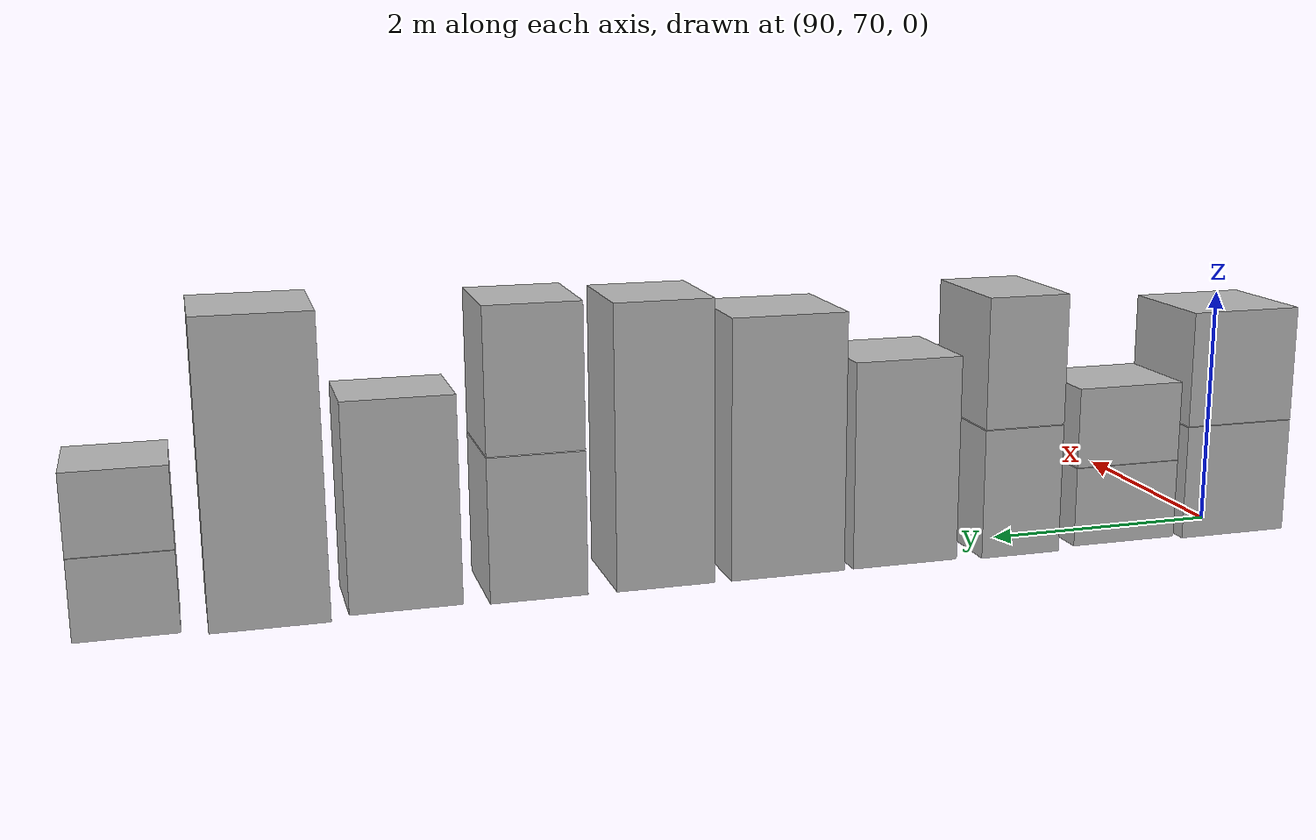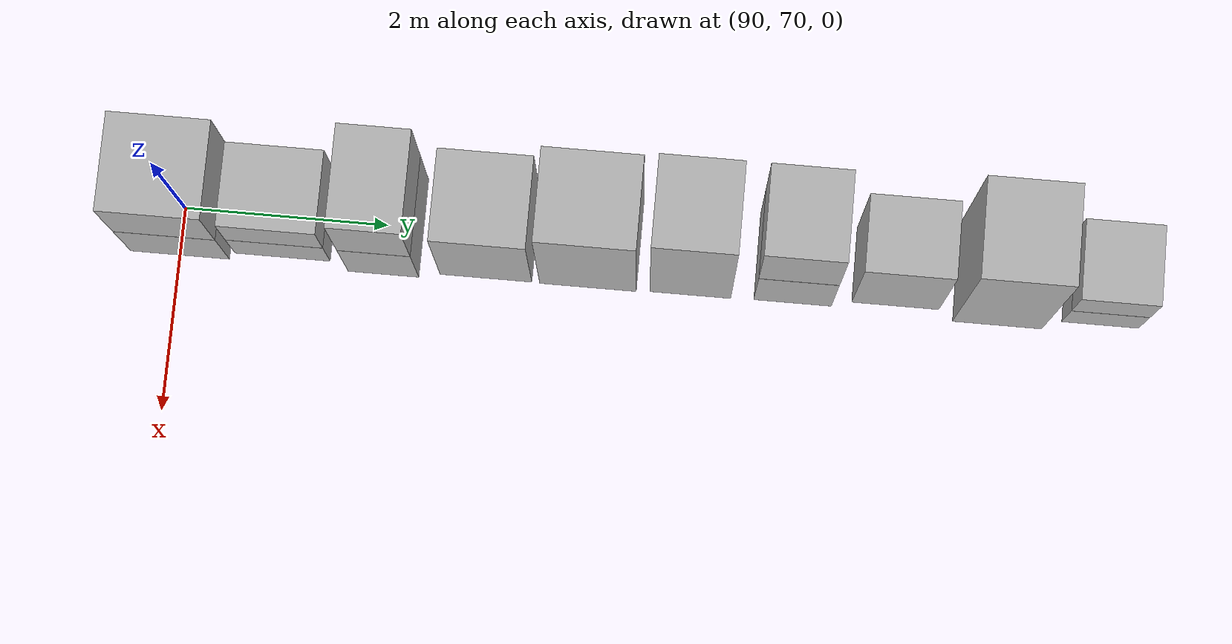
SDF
<sdf version="1.5">
 <world name="default">
  <model name="ground_plane">
   <static>true</static>
   <link name="link">
    <collision name="collision">
     <geometry><plane><normal>0 0 1</normal><size>250 250</size></plane></geometry>
     <surface><friction><ode><mu>1</mu><mu2>1</mu2></ode></friction></surface>
    </collision>
    <visual name="grass">
     <cast_shadows>false</cast_shadows>
     <geometry><mesh><uri>file://grass_plane/meshes/grass_plane.dae</uri></mesh></geometry>
    </visual>
   </link>
  </model>
  <model name="Cardboard_box_720">
   <link name="link_0">
    <pose>90 70 0 0 0 0</pose>
    <inertial>
     <mass>1</mass>
     <inertia>
      <ixx>0.166667</ixx>
      <ixy>0</ixy>
      <ixz>0</ixz>
      <iyy>0.166667</iyy>
      <iyz>0</iyz>
      <izz>0.166667</izz>
     </inertia>
    </inertial>
    <collision name="collision">
     <geometry>
      <mesh>
       <uri>model://Cardboard_box/meshes/cardboard_box.dae</uri>
       <scale>2.36227629901 2.44434173801 2.41922473162</scale>
      </mesh>
     </geometry>
    </collision>
    <visual name="visual">
     <geometry>
      <mesh>
       <uri>model://Cardboard_box/meshes/cardboard_box.dae</uri>
       <scale>2.36227629901 2.44434173801 2.41922473162</scale>
      </mesh>
     </geometry>
    </visual>
   </link>
   <static>1</static>
  </model>
  <model name="Cardboard_box_top_720">
   <link name="link_0">
    <pose>90 70 0.96768989265 0 0 0</pose>
    <inertial>
     <mass>1</mass>
     <inertia>
      <ixx>0.166667</ixx>
      <ixy>0</ixy>
      <ixz>0</ixz>
      <iyy>0.166667</iyy>
      <iyz>0</iyz>
      <izz>0.166667</izz>
     </inertia>
    </inertial>
    <collision name="collision">
     <geometry>
      <mesh>
       <uri>model://Cardboard_box/meshes/cardboard_box.dae</uri>
       <scale>2.36227629901 2.44434173801 2.41922473162</scale>
      </mesh>
     </geometry>
    </collision>
    <visual name="visual">
     <geometry>
      <mesh>
       <uri>model://Cardboard_box/meshes/cardboard_box.dae</uri>
       <scale>2.36227629901 2.44434173801 2.41922473162</scale>
      </mesh>
     </geometry>
    </visual>
   </link>
   <static>1</static>
  </model>
  <model name="Cardboard_box_721">
   <link name="link_0">
    <pose>90 71 0 0 0 0</pose>
    <inertial>
     <mass>1</mass>
     <inertia>
      <ixx>0.166667</ixx>
      <ixy>0</ixy>
      <ixz>0</ixz>
      <iyy>0.166667</iyy>
      <iyz>0</iyz>
      <izz>0.166667</izz>
     </inertia>
    </inertial>
    <collision name="collision">
     <geometry>
      <mesh>
       <uri>model://Cardboard_box/meshes/cardboard_box.dae</uri>
       <scale>2.03470084358 2.35611073073 1.68010185496</scale>
      </mesh>
     </geometry>
    </collision>
    <visual name="visual">
     <geometry>
      <mesh>
       <uri>model://Cardboard_box/meshes/cardboard_box.dae</uri>
       <scale>2.03470084358 2.35611073073 1.68010185496</scale>
      </mesh>
     </geometry>
    </visual>
   </link>
   <static>1</static>
  </model>
  <model name="Cardboard_box_top_721">
   <link name="link_0">
    <pose>90 71 0.672040741985 0 0 0</pose>
    <inertial>
     <mass>1</mass>
     <inertia>
      <ixx>0.166667</ixx>
      <ixy>0</ixy>
      <ixz>0</ixz>
      <iyy>0.166667</iyy>
      <iyz>0</iyz>
      <izz>0.166667</izz>
     </inertia>
    </inertial>
    <collision name="collision">
     <geometry>
      <mesh>
       <uri>model://Cardboard_box/meshes/cardboard_box.dae</uri>
       <scale>2.03470084358 2.35611073073 1.68010185496</scale>
      </mesh>
     </geometry>
    </collision>
    <visual name="visual">
     <geometry>
      <mesh>
       <uri>model://Cardboard_box/meshes/cardboard_box.dae</uri>
       <scale>2.03470084358 2.35611073073 1.68010185496</scale>
      </mesh>
     </geometry>
    </visual>
   </link>
   <static>1</static>
  </model>
  <model name="Cardboard_box_722">
   <link name="link_0">
    <pose>90 72 0 0 0 0</pose>
    <inertial>
     <mass>1</mass>
     <inertia>
      <ixx>0.166667</ixx>
      <ixy>0</ixy>
      <ixz>0</ixz>
      <iyy>0.166667</iyy>
      <iyz>0</iyz>
      <izz>0.166667</izz>
     </inertia>
    </inertial>
    <collision name="collision">
     <geometry>
      <mesh>
       <uri>model://Cardboard_box/meshes/cardboard_box.dae</uri>
       <scale>2.45652054648 1.74419543913 2.69760283321</scale>
      </mesh>
     </geometry>
    </collision>
    <visual name="visual">
     <geometry>
      <mesh>
       <uri>model://Cardboard_box/meshes/cardboard_box.dae</uri>
       <scale>2.45652054648 1.74419543913 2.69760283321</scale>
      </mesh>
     </geometry>
    </visual>
   </link>
   <static>1</static>
  </model>
  <model name="Cardboard_box_top_722">
   <link name="link_0">
    <pose>90 72 1.07904113328 0 0 0</pose>
    <inertial>
     <mass>1</mass>
     <inertia>
      <ixx>0.166667</ixx>
      <ixy>0</ixy>
      <ixz>0</ixz>
      <iyy>0.166667</iyy>
      <iyz>0</iyz>
      <izz>0.166667</izz>
     </inertia>
    </inertial>
    <collision name="collision">
     <geometry>
      <mesh>
       <uri>model://Cardboard_box/meshes/cardboard_box.dae</uri>
       <scale>2.45652054648 1.74419543913 2.69760283321</scale>
      </mesh>
     </geometry>
    </collision>
    <visual name="visual">
     <geometry>
      <mesh>
       <uri>model://Cardboard_box/meshes/cardboard_box.dae</uri>
       <scale>2.45652054648 1.74419543913 2.69760283321</scale>
      </mesh>
     </geometry>
    </visual>
   </link>
   <static>1</static>
  </model>
  <model name="Cardboard_box_723">
   <link name="link_0">
    <pose>90 73 0 0 0 0</pose>
    <inertial>
     <mass>1</mass>
     <inertia>
      <ixx>0.166667</ixx>
      <ixy>0</ixy>
      <ixz>0</ixz>
      <iyy>0.166667</iyy>
      <iyz>0</iyz>
      <izz>0.166667</izz>
     </inertia>
    </inertial>
    <collision name="collision">
     <geometry>
      <mesh>
       <uri>model://Cardboard_box/meshes/cardboard_box.dae</uri>
       <scale>2.21803894658 2.26666771666 4.24743680076</scale>
      </mesh>
     </geometry>
    </collision>
    <visual name="visual">
     <geometry>
      <mesh>
       <uri>model://Cardboard_box/meshes/cardboard_box.dae</uri>
       <scale>2.21803894658 2.26666771666 4.24743680076</scale>
      </mesh>
     </geometry>
    </visual>
   </link>
   <static>1</static>
  </model>
  <model name="Cardboard_box_724">
   <link name="link_0">
    <pose>90 74 0 0 0 0</pose>
    <inertial>
     <mass>1</mass>
     <inertia>
      <ixx>0.166667</ixx>
      <ixy>0</ixy>
      <ixz>0</ixz>
      <iyy>0.166667</iyy>
      <iyz>0</iyz>
      <izz>0.166667</izz>
     </inertia>
    </inertial>
    <collision name="collision">
     <geometry>
      <mesh>
       <uri>model://Cardboard_box/meshes/cardboard_box.dae</uri>
       <scale>2.24519056595 2.37934156239 5.27713786341</scale>
      </mesh>
     </geometry>
    </collision>
    <visual name="visual">
     <geometry>
      <mesh>
       <uri>model://Cardboard_box/meshes/cardboard_box.dae</uri>
       <scale>2.24519056595 2.37934156239 5.27713786341</scale>
      </mesh>
     </geometry>
    </visual>
   </link>
   <static>1</static>
  </model>
  <model name="Cardboard_box_725">
   <link name="link_0">
    <pose>90 75 0 0 0 0</pose>
    <inertial>
     <mass>1</mass>
     <inertia>
      <ixx>0.166667</ixx>
      <ixy>0</ixy>
      <ixz>0</ixz>
      <iyy>0.166667</iyy>
      <iyz>0</iyz>
      <izz>0.166667</izz>
     </inertia>
    </inertial>
    <collision name="collision">
     <geometry>
      <mesh>
       <uri>model://Cardboard_box/meshes/cardboard_box.dae</uri>
       <scale>2.18965581575 1.99142833052 5.68337641677</scale>
      </mesh>
     </geometry>
    </collision>
    <visual name="visual">
     <geometry>
      <mesh>
       <uri>model://Cardboard_box/meshes/cardboard_box.dae</uri>
       <scale>2.18965581575 1.99142833052 5.68337641677</scale>
      </mesh>
     </geometry>
    </visual>
   </link>
   <static>1</static>
  </model>
  <model name="Cardboard_box_726">
   <link name="link_0">
    <pose>90 76 0 0 0 0</pose>
    <inertial>
     <mass>1</mass>
     <inertia>
      <ixx>0.166667</ixx>
      <ixy>0</ixy>
      <ixz>0</ixz>
      <iyy>0.166667</iyy>
      <iyz>0</iyz>
      <izz>0.166667</izz>
     </inertia>
    </inertial>
    <collision name="collision">
     <geometry>
      <mesh>
       <uri>model://Cardboard_box/meshes/cardboard_box.dae</uri>
       <scale>2.15039274204 1.90733815692 2.86860161404</scale>
      </mesh>
     </geometry>
    </collision>
    <visual name="visual">
     <geometry>
      <mesh>
       <uri>model://Cardboard_box/meshes/cardboard_box.dae</uri>
       <scale>2.15039274204 1.90733815692 2.86860161404</scale>
      </mesh>
     </geometry>
    </visual>
   </link>
   <static>1</static>
  </model>
  <model name="Cardboard_box_top_726">
   <link name="link_0">
    <pose>90 76 1.14744064562 0 0 0</pose>
    <inertial>
     <mass>1</mass>
     <inertia>
      <ixx>0.166667</ixx>
      <ixy>0</ixy>
      <ixz>0</ixz>
      <iyy>0.166667</iyy>
      <iyz>0</iyz>
      <izz>0.166667</izz>
     </inertia>
    </inertial>
    <collision name="collision">
     <geometry>
      <mesh>
       <uri>model://Cardboard_box/meshes/cardboard_box.dae</uri>
       <scale>2.15039274204 1.90733815692 2.86860161404</scale>
      </mesh>
     </geometry>
    </collision>
    <visual name="visual">
     <geometry>
      <mesh>
       <uri>model://Cardboard_box/meshes/cardboard_box.dae</uri>
       <scale>2.15039274204 1.90733815692 2.86860161404</scale>
      </mesh>
     </geometry>
    </visual>
   </link>
   <static>1</static>
  </model>
  <model name="Cardboard_box_727">
   <link name="link_0">
    <pose>90 77 0 0 0 0</pose>
    <inertial>
     <mass>1</mass>
     <inertia>
      <ixx>0.166667</ixx>
      <ixy>0</ixy>
      <ixz>0</ixz>
      <iyy>0.166667</iyy>
      <iyz>0</iyz>
      <izz>0.166667</izz>
     </inertia>
    </inertial>
    <collision name="collision">
     <geometry>
      <mesh>
       <uri>model://Cardboard_box/meshes/cardboard_box.dae</uri>
       <scale>1.86069421815 2.14466220162 4.09804074117</scale>
      </mesh>
     </geometry>
    </collision>
    <visual name="visual">
     <geometry>
      <mesh>
       <uri>model://Cardboard_box/meshes/cardboard_box.dae</uri>
       <scale>1.86069421815 2.14466220162 4.09804074117</scale>
      </mesh>
     </geometry>
    </visual>
   </link>
   <static>1</static>
  </model>
  <model name="Cardboard_box_728">
   <link name="link_0">
    <pose>90 78 0 0 0 0</pose>
    <inertial>
     <mass>1</mass>
     <inertia>
      <ixx>0.166667</ixx>
      <ixy>0</ixy>
      <ixz>0</ixz>
      <iyy>0.166667</iyy>
      <iyz>0</iyz>
      <izz>0.166667</izz>
     </inertia>
    </inertial>
    <collision name="collision">
     <geometry>
      <mesh>
       <uri>model://Cardboard_box/meshes/cardboard_box.dae</uri>
       <scale>2.38758718046 2.19328989284 5.84391978957</scale>
      </mesh>
     </geometry>
    </collision>
    <visual name="visual">
     <geometry>
      <mesh>
       <uri>model://Cardboard_box/meshes/cardboard_box.dae</uri>
       <scale>2.38758718046 2.19328989284 5.84391978957</scale>
      </mesh>
     </geometry>
    </visual>
   </link>
   <static>1</static>
  </model>
  <model name="Cardboard_box_729">
   <link name="link_0">
    <pose>90 79 0 0 0 0</pose>
    <inertial>
     <mass>1</mass>
     <inertia>
      <ixx>0.166667</ixx>
      <ixy>0</ixy>
      <ixz>0</ixz>
      <iyy>0.166667</iyy>
      <iyz>0</iyz>
      <izz>0.166667</izz>
     </inertia>
    </inertial>
    <collision name="collision">
     <geometry>
      <mesh>
       <uri>model://Cardboard_box/meshes/cardboard_box.dae</uri>
       <scale>1.94443207684 1.88824893793 1.57354594852</scale>
      </mesh>
     </geometry>
    </collision>
    <visual name="visual">
     <geometry>
      <mesh>
       <uri>model://Cardboard_box/meshes/cardboard_box.dae</uri>
       <scale>1.94443207684 1.88824893793 1.57354594852</scale>
      </mesh>
     </geometry>
    </visual>
   </link>
   <static>1</static>
  </model>
  <model name="Cardboard_box_top_729">
   <link name="link_0">
    <pose>90 79 0.62941837941 0 0 0</pose>
    <inertial>
     <mass>1</mass>
     <inertia>
      <ixx>0.166667</ixx>
      <ixy>0</ixy>
      <ixz>0</ixz>
      <iyy>0.166667</iyy>
      <iyz>0</iyz>
      <izz>0.166667</izz>
     </inertia>
    </inertial>
    <collision name="collision">
     <geometry>
      <mesh>
       <uri>model://Cardboard_box/meshes/cardboard_box.dae</uri>
       <scale>1.94443207684 1.88824893793 1.57354594852</scale>
      </mesh>
     </geometry>
    </collision>
    <visual name="visual">
     <geometry>
      <mesh>
       <uri>model://Cardboard_box/meshes/cardboard_box.dae</uri>
       <scale>1.94443207684 1.88824893793 1.57354594852</scale>
      </mesh>
     </geometry>
    </visual>
   </link>
   <static>1</static>
  </model>
 </world>
</sdf>
